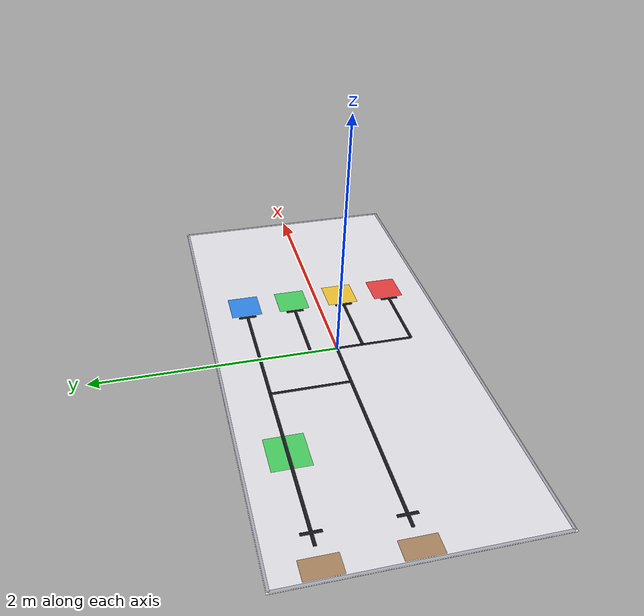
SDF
<?xml version="1.0" ?>
<sdf version="1.8">
  <model name="arena_floor">
    <static>true</static>
    <link name="link">

      <!-- 1. BASE FLOOR COLLISION & MAIN SLAB                                  -->
      <collision name="collision_floor">
        <pose>0 0 0.001 0 0 0</pose>
        <geometry>
          <box>
            <size>4.0 2.0 0.002</size>
          </box>
        </geometry>
        <surface>
          <friction>
            <ode>
              <mu>1.0</mu>
              <mu2>1.0</mu2>
            </ode>
          </friction>
        </surface>
      </collision>

      <!-- Main Floor Slab Visual (Clean Bright Canvas) -->
      <visual name="visual_floor_slab">
        <pose>0 0 0.001 0 0 0</pose>
        <geometry>
          <box>
            <size>4.0 2.0 0.002</size>
          </box>
        </geometry>
        <material>
          <ambient>0.93 0.93 0.95 1.0</ambient>
          <diffuse>0.93 0.93 0.95 1.0</diffuse>
          <specular>0.1 0.1 0.1 1.0</specular>
        </material>
      </visual>

      <!-- Outer Boundary Border -->
      <visual name="visual_border_north">
        <pose>0 0.985 0.0022 0 0 0</pose>
        <geometry><box><size>3.97 0.02 0.0003</size></box></geometry>
        <material><ambient>0.7 0.7 0.75 1</ambient><diffuse>0.7 0.7 0.75 1</diffuse></material>
      </visual>
      <visual name="visual_border_south">
        <pose>0 -0.985 0.0022 0 0 0</pose>
        <geometry><box><size>3.97 0.02 0.0003</size></box></geometry>
        <material><ambient>0.7 0.7 0.75 1</ambient><diffuse>0.7 0.7 0.75 1</diffuse></material>
      </visual>
      <visual name="visual_border_west">
        <pose>-1.985 0 0.0022 0 0 0</pose>
        <geometry><box><size>0.02 1.97 0.0003</size></box></geometry>
        <material><ambient>0.7 0.7 0.75 1</ambient><diffuse>0.7 0.7 0.75 1</diffuse></material>
      </visual>
      <visual name="visual_border_east">
        <pose>1.985 0 0.0022 0 0 0</pose>
        <geometry><box><size>0.02 1.97 0.0003</size></box></geometry>
        <material><ambient>0.7 0.7 0.75 1</ambient><diffuse>0.7 0.7 0.75 1</diffuse></material>
      </visual>

      <!-- 2. NAVIGATION TRACK LINES (Pure Geometric Black Boxes)                -->
      <!-- Lane 1 (Horizontal: Y = 0.640m, from X = -1.75m to X = +0.55m) -->
      <visual name="visual_line_lane1">
        <pose>-0.600 0.640 0.0023 0 0 0</pose>
        <geometry><box><size>2.300 0.025 0.0004</size></box></geometry>
        <material><ambient>0.10 0.10 0.12 1</ambient><diffuse>0.10 0.10 0.12 1</diffuse></material>
      </visual>

      <!-- Lane 2 (Horizontal: Y = 0.000m, from X = -1.75m to X = 0.00m) -->
      <visual name="visual_line_lane2">
        <pose>-0.875 0.000 0.0023 0 0 0</pose>
        <geometry><box><size>1.750 0.025 0.0004</size></box></geometry>
        <material><ambient>0.10 0.10 0.12 1</ambient><diffuse>0.10 0.10 0.12 1</diffuse></material>
      </visual>

      <!-- Central Switch Lane (Vertical: X = -0.400m, from Y = 0.00m to Y = +0.64m) -->
      <visual name="visual_line_switch">
        <pose>-0.400 0.320 0.0023 0 0 0</pose>
        <geometry><box><size>0.025 0.640 0.0004</size></box></geometry>
        <material><ambient>0.10 0.10 0.12 1</ambient><diffuse>0.10 0.10 0.12 1</diffuse></material>
      </visual>

      <!-- Distribution Trunk (Vertical: X = 0.000m, from Y = -0.64m to Y = +0.64m) -->
      <visual name="visual_line_dist_trunk">
        <pose>0.000 0.000 0.0023 0 0 0</pose>
        <geometry><box><size>0.025 1.280 0.0004</size></box></geometry>
        <material><ambient>0.10 0.10 0.12 1</ambient><diffuse>0.10 0.10 0.12 1</diffuse></material>
      </visual>

      <!-- Branch to Drop-Off Zone 2 (CPU: Y = +0.220m, from X = 0.00m to X = +0.55m) -->
      <visual name="visual_line_branch_z2">
        <pose>0.275 0.220 0.0023 0 0 0</pose>
        <geometry><box><size>0.550 0.025 0.0004</size></box></geometry>
        <material><ambient>0.10 0.10 0.12 1</ambient><diffuse>0.10 0.10 0.12 1</diffuse></material>
      </visual>

      <!-- Branch to Drop-Off Zone 3 (QR: Y = -0.220m, from X = 0.00m to X = +0.55m) -->
      <visual name="visual_line_branch_z3">
        <pose>0.275 -0.220 0.0023 0 0 0</pose>
        <geometry><box><size>0.550 0.025 0.0004</size></box></geometry>
        <material><ambient>0.10 0.10 0.12 1</ambient><diffuse>0.10 0.10 0.12 1</diffuse></material>
      </visual>

      <!-- Branch to Drop-Off Zone 4 (Chip: Y = -0.640m, from X = 0.00m to X = +0.55m) -->
      <visual name="visual_line_branch_z4">
        <pose>0.275 -0.640 0.0023 0 0 0</pose>
        <geometry><box><size>0.550 0.025 0.0004</size></box></geometry>
        <material><ambient>0.10 0.10 0.12 1</ambient><diffuse>0.10 0.10 0.12 1</diffuse></material>
      </visual>

      <!-- 3. STOP BARS (Cross indicator lines)                                 -->
      <!-- Stop Bar - Rack 1 -->
      <visual name="visual_stop_rack1">
        <pose>-1.650 0.640 0.0024 0 0 0</pose>
        <geometry><box><size>0.025 0.150 0.0005</size></box></geometry>
        <material><ambient>0.10 0.10 0.12 1</ambient><diffuse>0.10 0.10 0.12 1</diffuse></material>
      </visual>

      <!-- Stop Bar - Rack 2 -->
      <visual name="visual_stop_rack2">
        <pose>-1.650 0.000 0.0024 0 0 0</pose>
        <geometry><box><size>0.025 0.150 0.0005</size></box></geometry>
        <material><ambient>0.10 0.10 0.12 1</ambient><diffuse>0.10 0.10 0.12 1</diffuse></material>
      </visual>

      <!-- Stop Bar - Drop-off Zone 1 -->
      <visual name="visual_stop_drop1">
        <pose>0.550 0.640 0.0024 0 0 0</pose>
        <geometry><box><size>0.025 0.150 0.0005</size></box></geometry>
        <material><ambient>0.10 0.10 0.12 1</ambient><diffuse>0.10 0.10 0.12 1</diffuse></material>
      </visual>

      <!-- Stop Bar - Drop-off Zone 2 -->
      <visual name="visual_stop_drop2">
        <pose>0.550 0.220 0.0024 0 0 0</pose>
        <geometry><box><size>0.025 0.150 0.0005</size></box></geometry>
        <material><ambient>0.10 0.10 0.12 1</ambient><diffuse>0.10 0.10 0.12 1</diffuse></material>
      </visual>

      <!-- Stop Bar - Drop-off Zone 3 -->
      <visual name="visual_stop_drop3">
        <pose>0.550 -0.220 0.0024 0 0 0</pose>
        <geometry><box><size>0.025 0.150 0.0005</size></box></geometry>
        <material><ambient>0.10 0.10 0.12 1</ambient><diffuse>0.10 0.10 0.12 1</diffuse></material>
      </visual>

      <!-- Stop Bar - Drop-off Zone 4 -->
      <visual name="visual_stop_drop4">
        <pose>0.550 -0.640 0.0024 0 0 0</pose>
        <geometry><box><size>0.025 0.150 0.0005</size></box></geometry>
        <material><ambient>0.10 0.10 0.12 1</ambient><diffuse>0.10 0.10 0.12 1</diffuse></material>
      </visual>

      <!-- 4. RACK FOOTPRINTS & START ZONE                                      -->
      <!-- Rack 1 Base Area -->
      <visual name="visual_rack1_pad">
        <pose>-1.894 0.640 0.0021 0 0 0</pose>
        <geometry><box><size>0.15 0.27 0.0002</size></box></geometry>
        <material><ambient>0.65 0.50 0.35 1</ambient><diffuse>0.70 0.55 0.40 1</diffuse></material>
      </visual>

      <!-- Rack 2 Base Area -->
      <visual name="visual_rack2_pad">
        <pose>-1.894 0.000 0.0021 0 0 0</pose>
        <geometry><box><size>0.15 0.27 0.0002</size></box></geometry>
        <material><ambient>0.65 0.50 0.35 1</ambient><diffuse>0.70 0.55 0.40 1</diffuse></material>
      </visual>

      <!-- START ZONE (Green Pad at X = -0.985, Y = 0.640) -->
      <visual name="visual_start_pad">
        <pose>-0.985 0.640 0.0021 0 0 0</pose>
        <geometry><box><size>0.30 0.30 0.0002</size></box></geometry>
        <material><ambient>0.25 0.80 0.35 1</ambient><diffuse>0.30 0.85 0.40 1</diffuse></material>
      </visual>

      <!-- 5. 4 DROP-OFF ZONES                                                  -->
      <!-- Zone 1: Aluminum (Blue: X = +0.700, Y = +0.640) -->
      <visual name="visual_drop_zone1">
        <pose>0.700 0.640 0.0021 0 0 0</pose>
        <geometry><box><size>0.26 0.26 0.0002</size></box></geometry>
        <material><ambient>0.15 0.50 0.90 1</ambient><diffuse>0.20 0.55 0.95 1</diffuse></material>
      </visual>

      <!-- Zone 2: CPU (Green: X = +0.700, Y = +0.220) -->
      <visual name="visual_drop_zone2">
        <pose>0.700 0.220 0.0021 0 0 0</pose>
        <geometry><box><size>0.26 0.26 0.0002</size></box></geometry>
        <material><ambient>0.25 0.80 0.35 1</ambient><diffuse>0.30 0.85 0.40 1</diffuse></material>
      </visual>

      <!-- Zone 3: QR Code (Yellow: X = +0.700, Y = -0.220) -->
      <visual name="visual_drop_zone3">
        <pose>0.700 -0.220 0.0021 0 0 0</pose>
        <geometry><box><size>0.26 0.26 0.0002</size></box></geometry>
        <material><ambient>0.95 0.75 0.15 1</ambient><diffuse>0.98 0.80 0.20 1</diffuse></material>
      </visual>

      <!-- Zone 4: Chip (Red: X = +0.700, Y = -0.640) -->
      <visual name="visual_drop_zone4">
        <pose>0.700 -0.640 0.0021 0 0 0</pose>
        <geometry><box><size>0.26 0.26 0.0002</size></box></geometry>
        <material><ambient>0.90 0.20 0.20 1</ambient><diffuse>0.95 0.25 0.25 1</diffuse></material>
      </visual>

    </link>
  </model>
</sdf>
